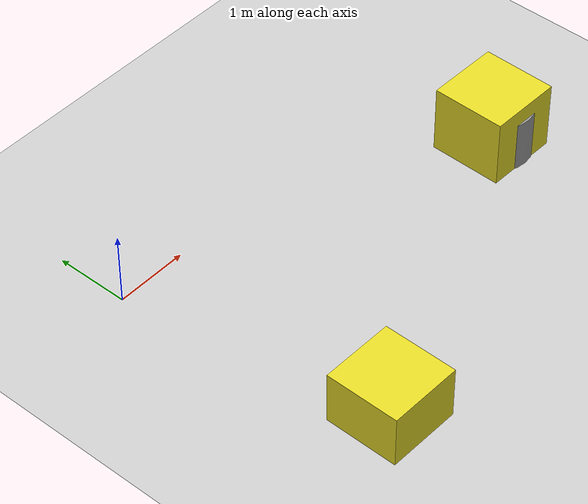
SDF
<sdf version="1.4">
 <world name="default">
  <light name="sun" type="directional">
   <pose>0 0 10 0 -0 0</pose>
   <diffuse>0.8 0.8 0.8 1</diffuse>
   <specular>0.2 0.2 0.2 1</specular>
   <attenuation>
    <range>1000</range>
    <constant>0.9</constant>
    <linear>0.01</linear>
    <quadratic>0.001</quadratic>
   </attenuation>
   <direction>-0.5 0.1 -0.9</direction>
  </light>
  <model name="ground_plane">
   <static>1</static>
   <link name="link">
    <collision name="collision">
     <geometry><plane><normal>0 0 1</normal><size>100 100</size></plane></geometry>
     <surface><friction><ode><mu>100</mu><mu2>50</mu2></ode></friction></surface>
    </collision>
    <visual name="visual">
     <cast_shadows>0</cast_shadows>
     <geometry><plane><normal>0 0 1</normal><size>100 100</size></plane></geometry>
     <material>
      <script><uri>file://media/materials/scripts/gazebo.material</uri><name>Gazebo/Grey</name></script>
     </material>
    </visual>
    <velocity_decay><linear>0</linear><angular>0</angular></velocity_decay>
   </link>
  </model>
  <physics type="ode">
   <max_step_size>0.001</max_step_size>
   <real_time_factor>1</real_time_factor>
   <real_time_update_rate>1000</real_time_update_rate>
   <gravity>0 0 -9.8</gravity>
  </physics>
  <scene><ambient>0.4 0.4 0.4 1</ambient><background>0.7 0.7 0.7 1</background><shadows>1</shadows></scene>
  <spherical_coordinates>
   <surface_model>EARTH_WGS84</surface_model>
   <latitude_deg>0</latitude_deg>
   <longitude_deg>0</longitude_deg>
   <elevation>0</elevation>
   <heading_deg>0</heading_deg>
  </spherical_coordinates>
  <model name="unit_box_3">
   <pose>4.97554 -1.56513 0.420745 -0.000894 0.001043 1.55191</pose>
   <link name="link">
    <inertial>
     <mass>1</mass>
     <inertia><ixx>1</ixx><ixy>0</ixy><ixz>0</ixz><iyy>1</iyy><iyz>0</iyz><izz>1</izz></inertia>
    </inertial>
    <collision name="collision">
     <geometry><box><size>1 1 0.027708</size></box></geometry>
     <surface><friction><ode><mu>100000</mu><mu2>100000</mu2></ode></friction></surface>
    </collision>
    <visual name="visual">
     <geometry><box><size>1 1 1</size></box></geometry>
     <material>
      <script><uri>file://media/materials/scripts/gazebo.material</uri><name>Gazebo/Yellow</name></script>
     </material>
    </visual>
    <velocity_decay><linear>0</linear><angular>0</angular></velocity_decay>
   </link>
   <static>0</static>
  </model>
  <model name="unit_box_1_0">
   <pose>0.65136 -3.52159 0.220241 -1.56454 1.57079 -1.57704</pose>
   <link name="link">
    <inertial>
     <mass>1</mass>
     <inertia><ixx>1</ixx><ixy>0</ixy><ixz>0</ixz><iyy>1</iyy><iyz>0</iyz><izz>1</izz></inertia>
    </inertial>
    <collision name="collision">
     <geometry><box><size>0.440482 1 1</size></box></geometry>
     <surface><friction><ode><mu>100000</mu><mu2>100000</mu2></ode></friction></surface>
    </collision>
    <visual name="visual">
     <geometry><box><size>1 1 1</size></box></geometry>
     <material>
      <script><uri>file://media/materials/scripts/gazebo.material</uri><name>Gazebo/Yellow</name></script>
     </material>
    </visual>
    <velocity_decay><linear>0</linear><angular>0</angular></velocity_decay>
   </link>
   <static>0</static>
  </model>
  <model name="unit_cylinder_1">
   <pose>5.00009 -1.59784 0.19375 -0.000661 -0.000512 -2e-06</pose>
   <link name="link">
    <inertial>
     <mass>1</mass>
     <inertia><ixx>1</ixx><ixy>0</ixy><ixz>0</ixz><iyy>1</iyy><iyz>0</iyz><izz>1</izz></inertia>
    </inertial>
    <collision name="collision">
     <geometry><cylinder><radius>0.0829168</radius><length>0.426361</length></cylinder></geometry>
    </collision>
    <visual name="visual">
     <geometry><cylinder><radius>0.5</radius><length>1</length></cylinder></geometry>
     <material>
      <script><uri>file://media/materials/scripts/gazebo.material</uri><name>Gazebo/Grey</name></script>
     </material>
    </visual>
    <velocity_decay><linear>0</linear><angular>0</angular></velocity_decay>
   </link>
   <static>0</static>
  </model>
 </world>
</sdf>
